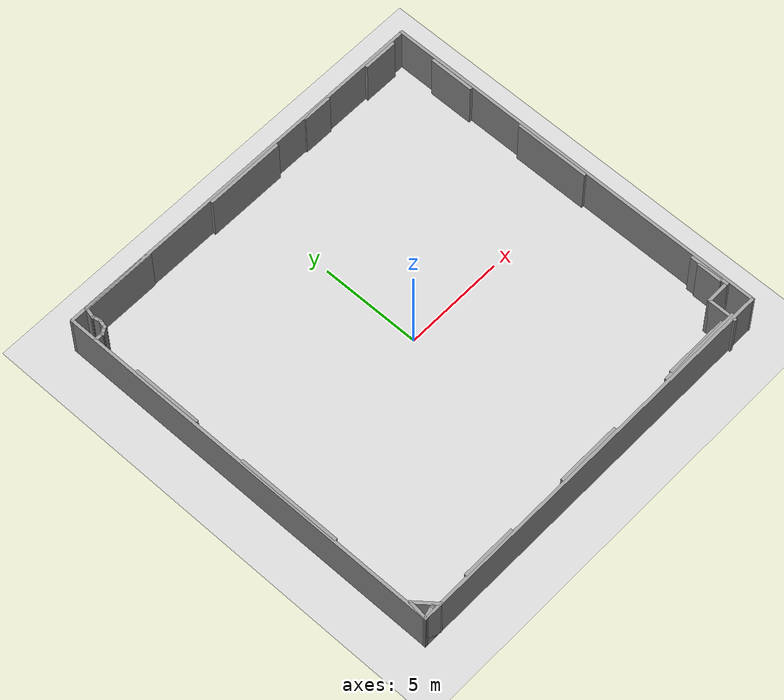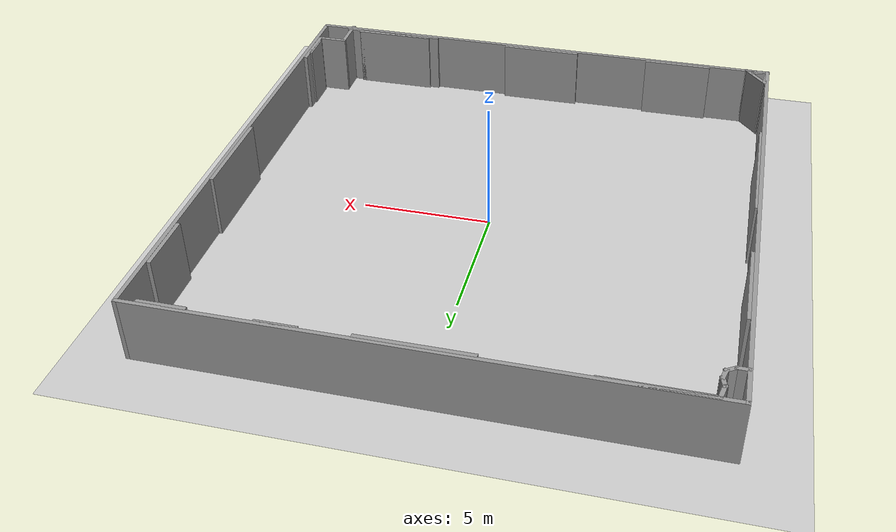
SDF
<sdf version="1.6">
 <world name="default">
  <light name="sun" type="directional">
   <pose>0 0 10 0 -0 0</pose>
   <diffuse>0.8 0.8 0.8 1</diffuse>
   <specular>0.2 0.2 0.2 1</specular>
   <attenuation>
    <range>1000</range>
    <constant>0.9</constant>
    <linear>0.01</linear>
    <quadratic>0.001</quadratic>
   </attenuation>
   <direction>-0.5 0.1 -0.9</direction>
  </light>
  <model name="ground_plane">
   <static>1</static>
   <link name="link">
    <collision name="collision">
     <geometry><plane><normal>0 0 1</normal><size>100 100</size></plane></geometry>
     <surface><friction><ode><mu>100</mu><mu2>50</mu2></ode></friction></surface>
    </collision>
    <visual name="visual">
     <cast_shadows>0</cast_shadows>
     <geometry><plane><normal>0 0 1</normal><size>100 100</size></plane></geometry>
     <material>
      <script><uri>file://media/materials/scripts/gazebo.material</uri><name>Gazebo/Grey</name></script>
     </material>
    </visual>
   </link>
  </model>
  <gravity>0 0 -9.8</gravity>
  <magnetic_field>6e-06 2.3e-05 -4.2e-05</magnetic_field>
  <atmosphere type="adiabatic"/>
  <physics name="default_physics" default="0" type="ode">
   <max_step_size>0.001</max_step_size>
   <real_time_factor>1</real_time_factor>
   <real_time_update_rate>1000</real_time_update_rate>
  </physics>
  <scene><ambient>0.4 0.4 0.4 1</ambient><background>0.7 0.7 0.7 1</background><shadows>1</shadows></scene>
  <spherical_coordinates>
   <surface_model>EARTH_WGS84</surface_model>
   <latitude_deg>0</latitude_deg>
   <longitude_deg>0</longitude_deg>
   <elevation>0</elevation>
   <heading_deg>0</heading_deg>
  </spherical_coordinates>
  <model name="4_ractangle">
   <link name="Wall_10">
    <collision name="Wall_10_Collision">
     <geometry><box><size>5.25 0.15 2.5</size></box></geometry>
     <pose>0 0 1.25 0 -0 0</pose>
    </collision>
    <visual name="Wall_10_Visual">
     <pose>0 0 1.25 0 -0 0</pose>
     <geometry><box><size>5.25 0.15 2.5</size></box></geometry>
     <material>
      <script><uri>file://media/materials/scripts/gazebo.material</uri><name>Gazebo/Grey</name></script>
      <ambient>1 1 1 1</ambient>
     </material>
     <meta><layer>0</layer></meta>
    </visual>
    <pose>-9.84178 -2.34206 0 0 -0 -1.5708</pose>
   </link>
   <link name="Wall_12">
    <collision name="Wall_12_Collision">
     <geometry><box><size>3.75 0.15 2.5</size></box></geometry>
     <pose>0 0 1.25 0 -0 0</pose>
    </collision>
    <visual name="Wall_12_Visual">
     <pose>0 0 1.25 0 -0 0</pose>
     <geometry><box><size>3.75 0.15 2.5</size></box></geometry>
     <material>
      <script><uri>file://media/materials/scripts/gazebo.material</uri><name>Gazebo/Grey</name></script>
      <ambient>1 1 1 1</ambient>
     </material>
     <meta><layer>0</layer></meta>
    </visual>
    <pose>9.82774 1.09988 0 0 -0 -1.5708</pose>
   </link>
   <link name="Wall_14">
    <collision name="Wall_14_Collision">
     <geometry><box><size>2.25 0.15 2.5</size></box></geometry>
     <pose>0 0 1.25 0 -0 0</pose>
    </collision>
    <visual name="Wall_14_Visual">
     <pose>0 0 1.25 0 -0 0</pose>
     <geometry><box><size>2.25 0.15 2.5</size></box></geometry>
     <material>
      <script><uri>file://media/materials/scripts/gazebo.material</uri><name>Gazebo/Grey</name></script>
      <ambient>1 1 1 1</ambient>
     </material>
     <meta><layer>0</layer></meta>
    </visual>
    <pose>9.79715 6.86668 0 0 -0 -1.5708</pose>
   </link>
   <link name="Wall_17">
    <collision name="Wall_17_Collision">
     <geometry><box><size>3.75 0.15 2.5</size></box></geometry>
     <pose>0 0 1.25 0 -0 0</pose>
    </collision>
    <visual name="Wall_17_Visual">
     <pose>0 0 1.25 0 -0 0</pose>
     <geometry><box><size>3.75 0.15 2.5</size></box></geometry>
     <material>
      <script><uri>file://media/materials/scripts/gazebo.material</uri><name>Gazebo/Grey</name></script>
      <ambient>1 1 1 1</ambient>
     </material>
     <meta><layer>0</layer></meta>
    </visual>
    <pose>-7.3382 9.93563 0 0 -0 0</pose>
   </link>
   <link name="Wall_19">
    <collision name="Wall_19_Collision">
     <geometry><box><size>4 0.15 2.5</size></box></geometry>
     <pose>0 0 1.25 0 -0 0</pose>
    </collision>
    <visual name="Wall_19_Visual">
     <pose>0 0 1.25 0 -0 0</pose>
     <geometry><box><size>4 0.15 2.5</size></box></geometry>
     <material>
      <script><uri>file://media/materials/scripts/gazebo.material</uri><name>Gazebo/Grey</name></script>
      <ambient>1 1 1 1</ambient>
     </material>
     <meta><layer>0</layer></meta>
    </visual>
    <pose>0.067271 9.84386 0 0 -0 0</pose>
   </link>
   <link name="Wall_21">
    <collision name="Wall_21_Collision">
     <geometry><box><size>1.5 0.15 2.5</size></box></geometry>
     <pose>0 0 1.25 0 -0 0</pose>
    </collision>
    <visual name="Wall_21_Visual">
     <pose>0 0 1.25 0 -0 0</pose>
     <geometry><box><size>1.5 0.15 2.5</size></box></geometry>
     <material>
      <script><uri>file://media/materials/scripts/gazebo.material</uri><name>Gazebo/Grey</name></script>
      <ambient>1 1 1 1</ambient>
     </material>
     <meta><layer>0</layer></meta>
    </visual>
    <pose>4.53764 9.90504 0 0 -0 0</pose>
   </link>
   <link name="Wall_23">
    <collision name="Wall_23_Collision">
     <geometry><box><size>1.75 0.15 2.5</size></box></geometry>
     <pose>0 0 1.25 0 -0 0</pose>
    </collision>
    <visual name="Wall_23_Visual">
     <pose>0 0 1.25 0 -0 0</pose>
     <geometry><box><size>1.75 0.15 2.5</size></box></geometry>
     <material>
      <script><uri>file://media/materials/scripts/gazebo.material</uri><name>Gazebo/Grey</name></script>
      <ambient>1 1 1 1</ambient>
     </material>
     <meta><layer>0</layer></meta>
    </visual>
    <pose>8.42524 9.84386 0 0 -0 0</pose>
   </link>
   <link name="Wall_26">
    <collision name="Wall_26_Collision">
     <geometry><box><size>2.75 0.15 2.5</size></box></geometry>
     <pose>0 0 1.25 0 -0 0</pose>
    </collision>
    <visual name="Wall_26_Visual">
     <pose>0 0 1.25 0 -0 0</pose>
     <geometry><box><size>2.75 0.15 2.5</size></box></geometry>
     <material>
      <script><uri>file://media/materials/scripts/gazebo.material</uri><name>Gazebo/Grey</name></script>
      <ambient>1 1 1 1</ambient>
     </material>
     <meta><layer>0</layer></meta>
    </visual>
    <pose>-6.12515 -9.76448 0 0 -0 0</pose>
   </link>
   <link name="Wall_28">
    <collision name="Wall_28_Collision">
     <geometry><box><size>3.25 0.15 2.5</size></box></geometry>
     <pose>0 0 1.25 0 -0 0</pose>
    </collision>
    <visual name="Wall_28_Visual">
     <pose>0 0 1.25 0 -0 0</pose>
     <geometry><box><size>3.25 0.15 2.5</size></box></geometry>
     <material>
      <script><uri>file://media/materials/scripts/gazebo.material</uri><name>Gazebo/Grey</name></script>
      <ambient>1 1 1 1</ambient>
     </material>
     <meta><layer>0</layer></meta>
    </visual>
    <pose>-0.124188 -9.73389 0 0 -0 0</pose>
   </link>
   <link name="Wall_3">
    <collision name="Wall_3_Collision">
     <geometry><box><size>20 0.15 2.5</size></box></geometry>
     <pose>0 0 1.25 0 -0 0</pose>
    </collision>
    <visual name="Wall_3_Visual">
     <pose>0 0 1.25 0 -0 0</pose>
     <geometry><box><size>20 0.15 2.5</size></box></geometry>
     <material>
      <script><uri>file://media/materials/scripts/gazebo.material</uri><name>Gazebo/Grey</name></script>
      <ambient>1 1 1 1</ambient>
     </material>
     <meta><layer>0</layer></meta>
    </visual>
    <pose>-9.93416 0.048748 0 0 -0 -1.5708</pose>
   </link>
   <link name="Wall_30">
    <collision name="Wall_30_Collision">
     <geometry><box><size>3.25 0.15 2.5</size></box></geometry>
     <pose>0 0 1.25 0 -0 0</pose>
    </collision>
    <visual name="Wall_30_Visual">
     <pose>0 0 1.25 0 -0 0</pose>
     <geometry><box><size>3.25 0.15 2.5</size></box></geometry>
     <material>
      <script><uri>file://media/materials/scripts/gazebo.material</uri><name>Gazebo/Grey</name></script>
      <ambient>1 1 1 1</ambient>
     </material>
     <meta><layer>0</layer></meta>
    </visual>
    <pose>6.63625 -9.67271 0 0 -0 0</pose>
   </link>
   <link name="Wall_32">
    <collision name="Wall_32_Collision">
     <geometry><box><size>3.25 0.15 2.5</size></box></geometry>
     <pose>0 0 1.25 0 -0 0</pose>
    </collision>
    <visual name="Wall_32_Visual">
     <pose>0 0 1.25 0 -0 0</pose>
     <geometry><box><size>3.25 0.15 2.5</size></box></geometry>
     <material>
      <script><uri>file://media/materials/scripts/gazebo.material</uri><name>Gazebo/Grey</name></script>
      <ambient>1 1 1 1</ambient>
     </material>
     <meta><layer>0</layer></meta>
    </visual>
    <pose>6.63625 -9.67271 0 0 -0 0</pose>
   </link>
   <link name="Wall_34">
    <collision name="Wall_34_Collision">
     <geometry><box><size>0.15 0.15 2.5</size></box></geometry>
     <pose>0 0 1.25 0 -0 0</pose>
    </collision>
    <visual name="Wall_34_Visual">
     <pose>0 0 1.25 0 -0 0</pose>
     <geometry><box><size>0.15 0.15 2.5</size></box></geometry>
     <material>
      <script><uri>file://media/materials/scripts/gazebo.material</uri><name>Gazebo/Grey</name></script>
      <ambient>1 1 1 1</ambient>
     </material>
     <meta><layer>0</layer></meta>
    </visual>
    <pose>8.18625 -9.67271 0 0 -0 0</pose>
   </link>
   <link name="Wall_38">
    <collision name="Wall_38_Collision">
     <geometry><box><size>4.25 0.15 2.5</size></box></geometry>
     <pose>0 0 1.25 0 -0 0</pose>
    </collision>
    <visual name="Wall_38_Visual">
     <pose>0 0 1.25 0 -0 0</pose>
     <geometry><box><size>4.25 0.15 2.5</size></box></geometry>
     <material>
      <script><uri>file://media/materials/scripts/gazebo.material</uri><name>Gazebo/Grey</name></script>
      <ambient>1 1 1 1</ambient>
     </material>
     <meta><layer>0</layer></meta>
    </visual>
    <pose>6.73622 -9.75875 0 0 -0 0</pose>
   </link>
   <link name="Wall_4">
    <collision name="Wall_4_Collision">
     <geometry><box><size>20 0.15 2.5</size></box></geometry>
     <pose>0 0 1.25 0 -0 0</pose>
    </collision>
    <visual name="Wall_4_Visual">
     <pose>0 0 1.25 0 -0 0</pose>
     <geometry><box><size>20 0.15 2.5</size></box></geometry>
     <material>
      <script><uri>file://media/materials/scripts/gazebo.material</uri><name>Gazebo/Grey</name></script>
      <ambient>1 1 1 1</ambient>
     </material>
     <meta><layer>0</layer></meta>
    </visual>
    <pose>-0.009162 -9.87625 0 0 -0 0</pose>
   </link>
   <link name="Wall_40">
    <collision name="Wall_40_Collision">
     <geometry><box><size>1.25 0.15 2.5</size></box></geometry>
     <pose>0 0 1.25 0 -0 0</pose>
    </collision>
    <visual name="Wall_40_Visual">
     <pose>0 0 1.25 0 -0 0</pose>
     <geometry><box><size>1.25 0.15 2.5</size></box></geometry>
     <material>
      <script><uri>file://media/materials/scripts/gazebo.material</uri><name>Gazebo/Grey</name></script>
      <ambient>1 1 1 1</ambient>
     </material>
     <meta><layer>0</layer></meta>
    </visual>
    <pose>9.73892 -7.75201 0 0 -0 -1.5708</pose>
   </link>
   <link name="Wall_42">
    <collision name="Wall_42_Collision">
     <geometry><box><size>2 0.15 2.5</size></box></geometry>
     <pose>0 0 1.25 0 -0 0</pose>
    </collision>
    <visual name="Wall_42_Visual">
     <pose>0 0 1.25 0 -0 0</pose>
     <geometry><box><size>2 0.15 2.5</size></box></geometry>
     <material>
      <script><uri>file://media/materials/scripts/gazebo.material</uri><name>Gazebo/Grey</name></script>
      <ambient>1 1 1 1</ambient>
     </material>
     <meta><layer>0</layer></meta>
    </visual>
    <pose>9.8001 -7.69875 0 0 -0 -1.5708</pose>
   </link>
   <link name="Wall_44">
    <collision name="Wall_44_Collision">
     <geometry><box><size>1.0604 0.15 2.5</size></box></geometry>
     <pose>0 0 1.25 0 -0 0</pose>
    </collision>
    <visual name="Wall_44_Visual">
     <pose>0 0 1.25 0 -0 0</pose>
     <geometry><box><size>1.0604 0.15 2.5</size></box></geometry>
     <material>
      <script><uri>file://media/materials/scripts/gazebo.material</uri><name>Gazebo/Grey</name></script>
      <ambient>1 1 1 1</ambient>
     </material>
     <meta><layer>0</layer></meta>
    </visual>
    <pose>-9.88367 -9.42386 0 0 -0 -1.68194</pose>
   </link>
   <link name="Wall_45">
    <collision name="Wall_45_Collision">
     <geometry><box><size>1 0.15 2.5</size></box></geometry>
     <pose>0 0 1.25 0 -0 0</pose>
    </collision>
    <visual name="Wall_45_Visual">
     <pose>0 0 1.25 0 -0 0</pose>
     <geometry><box><size>1 0.15 2.5</size></box></geometry>
     <material>
      <script><uri>file://media/materials/scripts/gazebo.material</uri><name>Gazebo/Grey</name></script>
      <ambient>1 1 1 1</ambient>
     </material>
     <meta><layer>0</layer></meta>
    </visual>
    <pose>-9.50916 -9.87625 0 0 -0 0</pose>
   </link>
   <link name="Wall_47">
    <collision name="Wall_47_Collision">
     <geometry><box><size>1 0.15 2.5</size></box></geometry>
     <pose>0 0 1.25 0 -0 0</pose>
    </collision>
    <visual name="Wall_47_Visual">
     <pose>0 0 1.25 0 -0 0</pose>
     <geometry><box><size>1 0.15 2.5</size></box></geometry>
     <material>
      <script><uri>file://media/materials/scripts/gazebo.material</uri><name>Gazebo/Grey</name></script>
      <ambient>1 1 1 1</ambient>
     </material>
     <meta><layer>0</layer></meta>
    </visual>
    <pose>-9.50916 -9.87625 0 0 -0 3.14159</pose>
   </link>
   <link name="Wall_48">
    <collision name="Wall_48_Collision">
     <geometry><box><size>0.75 0.15 2.5</size></box></geometry>
     <pose>0 0 1.25 0 -0 0</pose>
    </collision>
    <visual name="Wall_48_Visual">
     <pose>0 0 1.25 0 -0 0</pose>
     <geometry><box><size>0.75 0.15 2.5</size></box></geometry>
     <material>
      <script><uri>file://media/materials/scripts/gazebo.material</uri><name>Gazebo/Grey</name></script>
      <ambient>1 1 1 1</ambient>
     </material>
     <meta><layer>0</layer></meta>
    </visual>
    <pose>-9.64438 -9.79861 0 0 -0 0.261799</pose>
   </link>
   <link name="Wall_49">
    <collision name="Wall_49_Collision">
     <geometry><box><size>0.15 0.15 2.5</size></box></geometry>
     <pose>0 0 1.25 0 -0 0</pose>
    </collision>
    <visual name="Wall_49_Visual">
     <pose>0 0 1.25 0 -0 0</pose>
     <geometry><box><size>0.15 0.15 2.5</size></box></geometry>
     <material>
      <script><uri>file://media/materials/scripts/gazebo.material</uri><name>Gazebo/Grey</name></script>
      <ambient>1 1 1 1</ambient>
     </material>
     <meta><layer>0</layer></meta>
    </visual>
    <pose>-9.35461 -9.72096 0 0 -0 0</pose>
   </link>
   <link name="Wall_5">
    <collision name="Wall_5_Collision">
     <geometry><box><size>20 0.15 2.5</size></box></geometry>
     <pose>0 0 1.25 0 -0 0</pose>
    </collision>
    <visual name="Wall_5_Visual">
     <pose>0 0 1.25 0 -0 0</pose>
     <geometry><box><size>20 0.15 2.5</size></box></geometry>
     <material>
      <script><uri>file://media/materials/scripts/gazebo.material</uri><name>Gazebo/Grey</name></script>
      <ambient>1 1 1 1</ambient>
     </material>
     <meta><layer>0</layer></meta>
    </visual>
    <pose>9.95102 0.048748 0 0 -0 1.5708</pose>
   </link>
   <link name="Wall_51">
    <collision name="Wall_51_Collision">
     <geometry><box><size>1.32459 0.15 2.5</size></box></geometry>
     <pose>0 0 1.25 0 -0 0</pose>
    </collision>
    <visual name="Wall_51_Visual">
     <pose>0 0 1.25 0 -0 0</pose>
     <geometry><box><size>1.32459 0.15 2.5</size></box></geometry>
     <material>
      <script><uri>file://media/materials/scripts/gazebo.material</uri><name>Gazebo/Grey</name></script>
      <ambient>1 1 1 1</ambient>
     </material>
     <meta><layer>0</layer></meta>
    </visual>
    <pose>-9.45867 -9.42386 0 0 -0 -0.879303</pose>
   </link>
   <link name="Wall_53">
    <collision name="Wall_53_Collision">
     <geometry><box><size>1.25 0.15 2.5</size></box></geometry>
     <pose>0 0 1.25 0 -0 0</pose>
    </collision>
    <visual name="Wall_53_Visual">
     <pose>0 0 1.25 0 -0 0</pose>
     <geometry><box><size>1.25 0.15 2.5</size></box></geometry>
     <material>
      <script><uri>file://media/materials/scripts/gazebo.material</uri><name>Gazebo/Grey</name></script>
      <ambient>1 1 1 1</ambient>
     </material>
     <meta><layer>0</layer></meta>
    </visual>
    <pose>9.2501 -8.62375 0 0 -0 3.14159</pose>
   </link>
   <link name="Wall_54">
    <collision name="Wall_54_Collision">
     <geometry><box><size>1.5 0.15 2.5</size></box></geometry>
     <pose>0 0 1.25 0 -0 0</pose>
    </collision>
    <visual name="Wall_54_Visual">
     <pose>0 0 1.25 0 -0 0</pose>
     <geometry><box><size>1.5 0.15 2.5</size></box></geometry>
     <material>
      <script><uri>file://media/materials/scripts/gazebo.material</uri><name>Gazebo/Grey</name></script>
      <ambient>1 1 1 1</ambient>
     </material>
     <meta><layer>0</layer></meta>
    </visual>
    <pose>8.7001 -9.29875 0 0 -0 -1.5708</pose>
   </link>
   <link name="Wall_56">
    <collision name="Wall_56_Collision">
     <geometry><box><size>0.5 0.15 2.5</size></box></geometry>
     <pose>0 0 1.25 0 -0 0</pose>
    </collision>
    <visual name="Wall_56_Visual">
     <pose>0 0 1.25 0 -0 0</pose>
     <geometry><box><size>0.5 0.15 2.5</size></box></geometry>
     <material>
      <script><uri>file://media/materials/scripts/gazebo.material</uri><name>Gazebo/Grey</name></script>
      <ambient>1 1 1 1</ambient>
     </material>
     <meta><layer>0</layer></meta>
    </visual>
    <pose>-9.723 8.59957 0 0 -0 0</pose>
   </link>
   <link name="Wall_57">
    <collision name="Wall_57_Collision">
     <geometry><box><size>0.5 0.15 2.5</size></box></geometry>
     <pose>0 0 1.25 0 -0 0</pose>
    </collision>
    <visual name="Wall_57_Visual">
     <pose>0 0 1.25 0 -0 0</pose>
     <geometry><box><size>0.5 0.15 2.5</size></box></geometry>
     <material>
      <script><uri>file://media/materials/scripts/gazebo.material</uri><name>Gazebo/Grey</name></script>
      <ambient>1 1 1 1</ambient>
     </material>
     <meta><layer>0</layer></meta>
    </visual>
    <pose>-9.39645 8.68708 0 0 -0 0.523599</pose>
   </link>
   <link name="Wall_58">
    <collision name="Wall_58_Collision">
     <geometry><box><size>0.15 0.15 2.5</size></box></geometry>
     <pose>0 0 1.25 0 -0 0</pose>
    </collision>
    <visual name="Wall_58_Visual">
     <pose>0 0 1.25 0 -0 0</pose>
     <geometry><box><size>0.15 0.15 2.5</size></box></geometry>
     <material>
      <script><uri>file://media/materials/scripts/gazebo.material</uri><name>Gazebo/Grey</name></script>
      <ambient>1 1 1 1</ambient>
     </material>
     <meta><layer>0</layer></meta>
    </visual>
    <pose>-9.24489 8.77458 0 0 -0 0</pose>
   </link>
   <link name="Wall_59">
    <collision name="Wall_59_Collision">
     <geometry><box><size>0.5 0.15 2.5</size></box></geometry>
     <pose>0 0 1.25 0 -0 0</pose>
    </collision>
    <visual name="Wall_59_Visual">
     <pose>0 0 1.25 0 -0 0</pose>
     <geometry><box><size>0.5 0.15 2.5</size></box></geometry>
     <material>
      <script><uri>file://media/materials/scripts/gazebo.material</uri><name>Gazebo/Grey</name></script>
      <ambient>1 1 1 1</ambient>
     </material>
     <meta><layer>0</layer></meta>
    </visual>
    <pose>-9.1996 8.94361 0 0 -0 1.309</pose>
   </link>
   <link name="Wall_6">
    <collision name="Wall_6_Collision">
     <geometry><box><size>20 0.15 2.5</size></box></geometry>
     <pose>0 0 1.25 0 -0 0</pose>
    </collision>
    <visual name="Wall_6_Visual">
     <pose>0 0 1.25 0 -0 0</pose>
     <geometry><box><size>20 0.15 2.5</size></box></geometry>
     <material>
      <script><uri>file://media/materials/scripts/gazebo.material</uri><name>Gazebo/Grey</name></script>
      <ambient>1 1 1 1</ambient>
     </material>
     <meta><layer>0</layer></meta>
    </visual>
    <pose>-0.009162 9.97375 0 0 -0 3.14159</pose>
   </link>
   <link name="Wall_60">
    <collision name="Wall_60_Collision">
     <geometry><box><size>0.5 0.15 2.5</size></box></geometry>
     <pose>0 0 1.25 0 -0 0</pose>
    </collision>
    <visual name="Wall_60_Visual">
     <pose>0 0 1.25 0 -0 0</pose>
     <geometry><box><size>0.5 0.15 2.5</size></box></geometry>
     <material>
      <script><uri>file://media/materials/scripts/gazebo.material</uri><name>Gazebo/Grey</name></script>
      <ambient>1 1 1 1</ambient>
     </material>
     <meta><layer>0</layer></meta>
    </visual>
    <pose>-9.1996 9.28169 0 0 -0 1.8326</pose>
   </link>
   <link name="Wall_62">
    <collision name="Wall_62_Collision">
     <geometry><box><size>0.15 0.15 2.5</size></box></geometry>
     <pose>0 0 1.25 0 -0 0</pose>
    </collision>
    <visual name="Wall_62_Visual">
     <pose>0 0 1.25 0 -0 0</pose>
     <geometry><box><size>0.15 0.15 2.5</size></box></geometry>
     <material>
      <script><uri>file://media/materials/scripts/gazebo.material</uri><name>Gazebo/Grey</name></script>
      <ambient>1 1 1 1</ambient>
     </material>
     <meta><layer>0</layer></meta>
    </visual>
    <pose>-9.24489 9.45072 0 0 -0 0</pose>
   </link>
   <link name="Wall_63">
    <collision name="Wall_63_Collision">
     <geometry><box><size>0.646505 0.15 2.5</size></box></geometry>
     <pose>0 0 1.25 0 -0 0</pose>
    </collision>
    <visual name="Wall_63_Visual">
     <pose>0 0 1.25 0 -0 0</pose>
     <geometry><box><size>0.646505 0.15 2.5</size></box></geometry>
     <material>
      <script><uri>file://media/materials/scripts/gazebo.material</uri><name>Gazebo/Grey</name></script>
      <ambient>1 1 1 1</ambient>
     </material>
     <meta><layer>0</layer></meta>
    </visual>
    <pose>-9.19155 9.69318 0 0 -0 1.35423</pose>
   </link>
   <link name="Wall_8">
    <collision name="Wall_8_Collision">
     <geometry><box><size>3.5 0.15 2.5</size></box></geometry>
     <pose>0 0 1.25 0 -0 0</pose>
    </collision>
    <visual name="Wall_8_Visual">
     <pose>0 0 1.25 0 -0 0</pose>
     <geometry><box><size>3.5 0.15 2.5</size></box></geometry>
     <material>
      <script><uri>file://media/materials/scripts/gazebo.material</uri><name>Gazebo/Grey</name></script>
      <ambient>1 1 1 1</ambient>
     </material>
     <meta><layer>0</layer></meta>
    </visual>
    <pose>-9.81119 4.5898 0 0 -0 -1.5708</pose>
   </link>
   <static>1</static>
  </model>
 </world>
</sdf>
